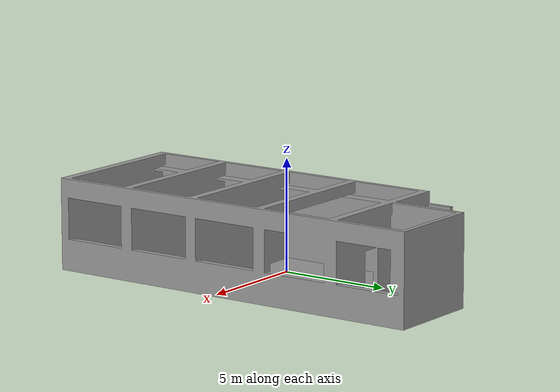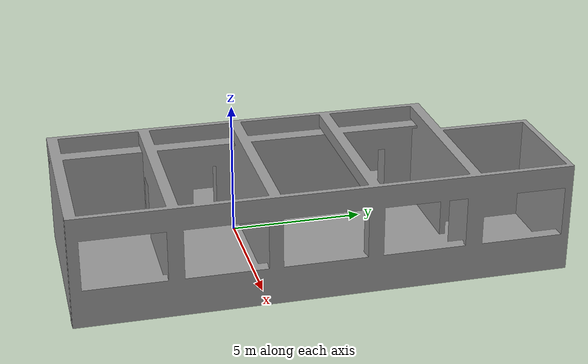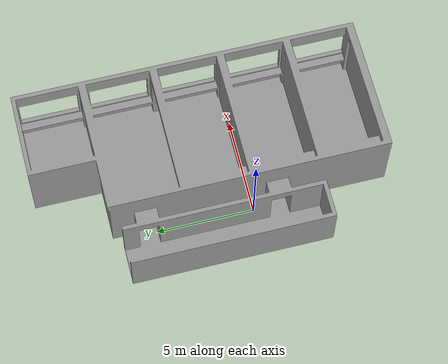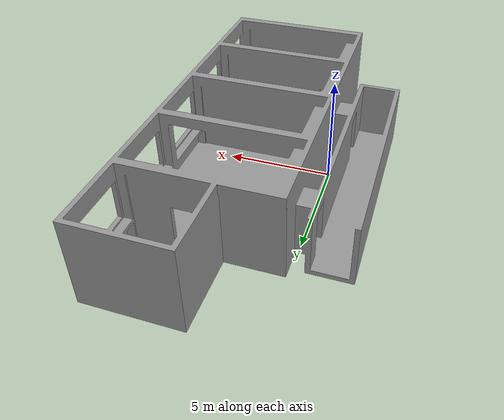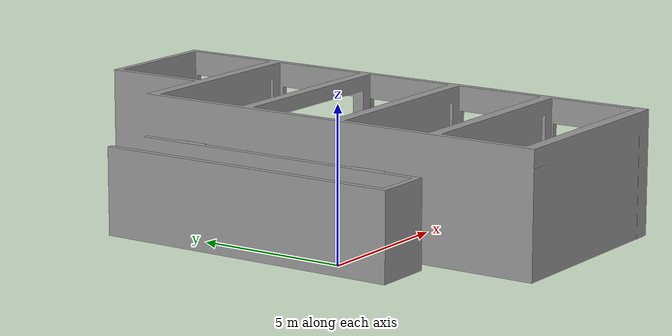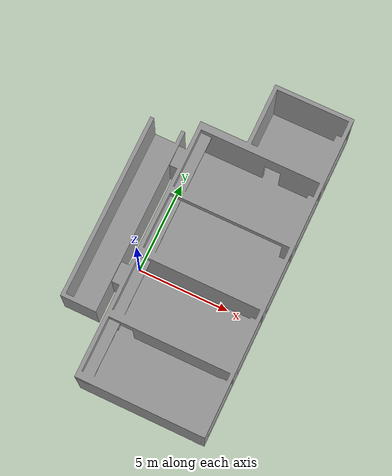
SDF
<?xml version='1.0'?>
<sdf version="1.4">
<model name="my_model">
  <pose>0 0 0.5 0 0 0</pose>
  <static>true</static>
    <link name="link">
      <inertial>
        <mass>1.0</mass>
        <inertia> <!-- interias are tricky to compute -->
          <!-- http://answers.gazebosim.org/question/4372/the-inertia-matrix-explained/ -->
          <ixx>0.083</ixx>       <!-- for a box: ixx = 0.083 * mass * (y*y + z*z) -->
          <ixy>0.0</ixy>         <!-- for a box: ixy = 0 -->
          <ixz>0.0</ixz>         <!-- for a box: ixz = 0 -->
          <iyy>0.083</iyy>       <!-- for a box: iyy = 0.083 * mass * (x*x + z*z) -->
          <iyz>0.0</iyz>         <!-- for a box: iyz = 0 -->
          <izz>0.083</izz>       <!-- for a box: izz = 0.083 * mass * (x*x + y*y) -->
        </inertia>
      </inertial>
      <collision name="collision">
        <geometry>
          <box>
            <mesh><uri>file://complete_no_ceiling.dae</uri></mesh>
          </box>
        </geometry>
      </collision>
      <visual name="visual">
          <geometry>
            <mesh><uri>file://complete_no_ceiling.dae</uri></mesh>
          </geometry>
        </visual>
    </link>
  </model>
</sdf>
